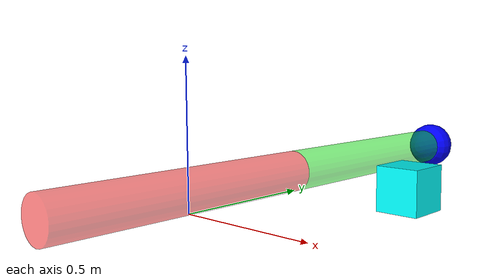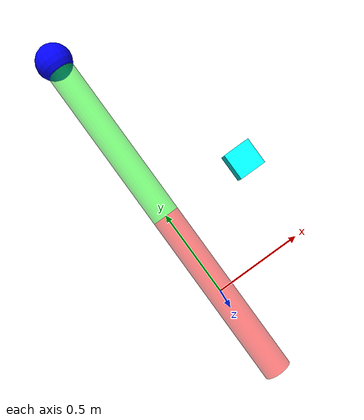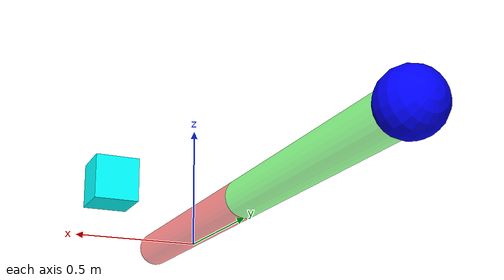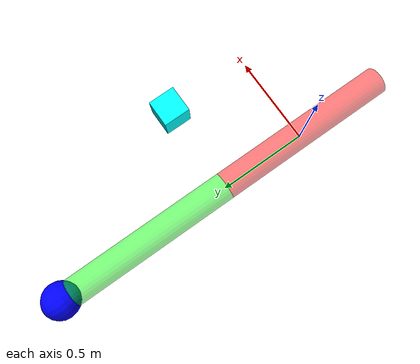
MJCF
<mujoco model="reacher scene">
    <statistic center="0.2 0 0.2" extent="1.0" />

    <visual>
        <headlight diffuse="0.6 0.6 0.6" ambient="0.3 0.3 0.3" specular="0 0 0" />
        <rgba haze="0.15 0.25 0.35 1" />
        <global azimuth="-120" elevation="-20" />
    </visual>

    <worldbody>
        <light pos="0 0 0" dir="0 0 -1" directional="true" />

        <body name="link_1" pos="0 0 0.075" euler="90 0 0">
            <geom type="cylinder" size="0.075 0.5" rgba="1 0 0 .5" />
            <joint name="joint_1" type="hinge" axis="0 1 0" pos="0 -0.075 0.5" />

            <body name="link_2" pos="0 0 -1" euler="0 0 0">
                <geom type="cylinder" size="0.075 0.5" rgba="0 1 0 .5" />
                <joint name="joint_2" type="hinge" axis="0 1 0" pos="0 -0.075 0.5" />
                <site name="endeffector" type="sphere" rgba="0 0 1 1" size=".1" pos="0 0 -0.5" />
            </body>
        </body>

        <site name="target" type="box" rgba="0 1 1 1" size=".075 .075 .075" pos="0.5 0.5 0.075" />
    </worldbody>

    <visual>
        <global offwidth="1920" offheight="1080" />
    </visual>
</mujoco>
